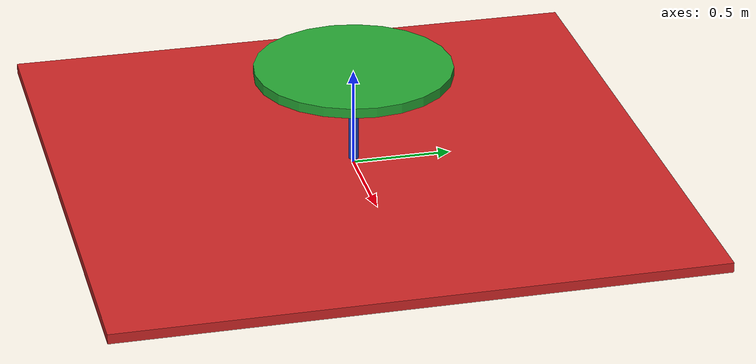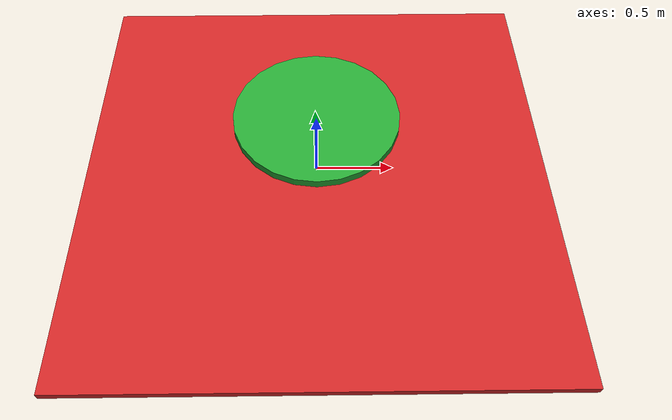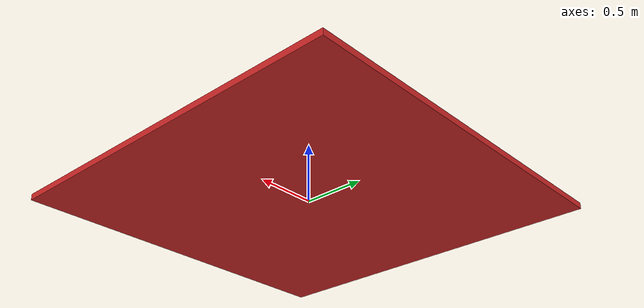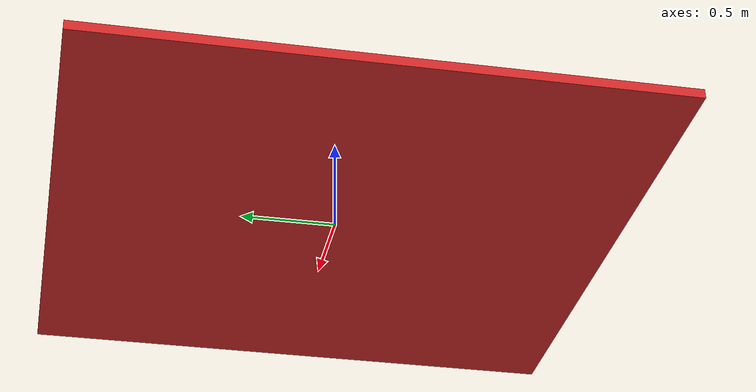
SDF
<sdf version='1.6'>
  <model name='gurdy'>
    <link name='x_axis_link'>
      <pose frame=''>0 0 0.0 0 -0 0</pose>
      <inertial>
        <pose frame=''>0 0 0.002273 0 -0 0</pose>
        <mass>1.1</mass>
        <inertia>
          <ixx>9.92432e-05</ixx>
          <ixy>0</ixy>
          <ixz>0</ixz>
          <iyy>9.92432e-05</iyy>
          <iyz>0</iyz>
          <izz>4.29167e-05</izz>
        </inertia>
      </inertial>
      <collision name='x_axis_link_collision'>
        <pose frame=''>0 0 0 0 -0 0</pose>
        <geometry>
          <box>
            <size>2.5 2.5 0.05</size>
          </box>
        </geometry>
        <surface>
          <contact>
            <ode/>
          </contact>
          <friction>
            <ode>
              <mu>10</mu>
              <mu2>10</mu2>
            </ode>
          </friction>
        </surface>
      </collision>
      <visual name='x_axis_link_visual'>
        <pose frame=''>0 0 0 0 -0 0</pose>
        <geometry>
          <box>
            <size>3 3 0.05</size>
          </box>
        </geometry>
        <material>
          <script>
            <name>Gazebo/Red</name>
            <uri>file://media/materials/scripts/gazebo.material</uri>
          </script>
        </material>
      </visual>
      <visual name='x_axis_link_fixed_joint_lump__entity_link_visual_1'>
        <pose frame=''>0 0 0.25 0 -0 0</pose>
        <geometry>
          <cylinder>
            <length>0.50</length>
            <radius>0.025</radius>
          </cylinder>
        </geometry>
        <material>
          <script>
            <name>Gazebo/Blue</name>
            <uri>file://media/materials/scripts/gazebo.material</uri>
          </script>
        </material>
      </visual>
      <velocity_decay/>
      <gravity>1</gravity>
      <velocity_decay/>
    </link>
    <joint name='x_axis_joint' type='prismatic'>
      <child>x_axis_link</child>
      <parent>world</parent>
      <axis>
        <xyz>1 0 0</xyz>
        <limit>
          <lower>-5</lower>
          <upper>5</upper>
          <effort>10000</effort>
          <velocity>1</velocity>
        </limit>
        <dynamics>
          <spring_reference>0</spring_reference>
          <spring_stiffness>0</spring_stiffness>
        </dynamics>
        <use_parent_model_frame>1</use_parent_model_frame>
      </axis>
    </joint>

    <link name='z_axis_link'>
      <pose frame=''>0 0 0.51 0 -0 0</pose>
      <inertial>
        <pose frame=''>0 0 0 0 -0 0</pose>
        <mass>0.1</mass>
        <inertia>
          <ixx>4.16667e-05</ixx>
          <ixy>0</ixy>
          <ixz>0</ixz>
          <iyy>4.16667e-05</iyy>
          <iyz>0</iyz>
          <izz>4.16667e-05</izz>
        </inertia>
      </inertial>
      <collision name='z_axis_link_collision'>
        <pose frame=''>0 0 0 0 -0 0</pose>
        <geometry>
          <cylinder>
            <length>0.05</length>
            <radius>0.5</radius>
          </cylinder>
        </geometry>
        <surface>
          <contact>
            <ode/>
          </contact>
          <friction>
            <ode>
              <mu>10</mu>
              <mu2>10</mu2>
            </ode>
          </friction>
        </surface>
      </collision>
      <visual name='z_axis_link_visual'>
        <pose frame=''>0 0 0 0 -0 0</pose>
        <geometry>
          <cylinder>
            <length>0.05</length>
            <radius>0.5</radius>
          </cylinder>
        </geometry>
        <material>
          <script>
            <name>Gazebo/Green</name>
            <uri>file://media/materials/scripts/gazebo.material</uri>
          </script>
        </material>
      </visual>
      <gravity>1</gravity>
      <velocity_decay/>
    </link>
    <joint name='z_axis_joint' type='ball'>
      <child>z_axis_link</child>
      <parent>x_axis_link</parent>
      <axis>
        <xyz>0 0 1</xyz>
        <limit>
          <lower>-5</lower>
          <upper>5</upper>
          <effort>10000</effort>
          <velocity>1</velocity>
        </limit>
        <dynamics>
          <spring_reference>0</spring_reference>
          <spring_stiffness>0</spring_stiffness>
        </dynamics>
        <use_parent_model_frame>1</use_parent_model_frame>
      </axis>
    </joint>
    <static>0</static>
    <plugin name='gazebo_ros_control' filename='libgazebo_ros_control.so'>
      <robotSimType>gazebo_ros_control/DefaultRobotHWSim</robotSimType>
      <legacyModeNS>1</legacyModeNS>
    </plugin>
  </model>
</sdf>
